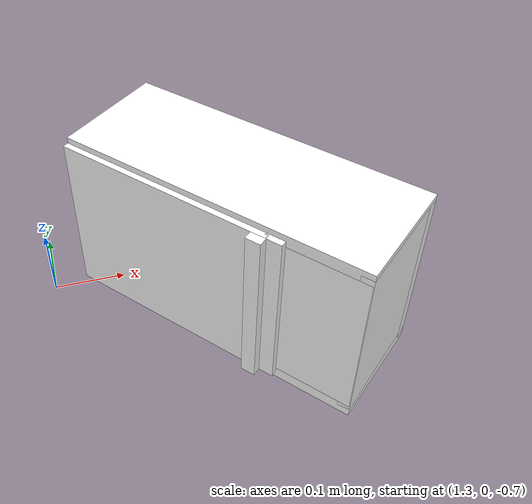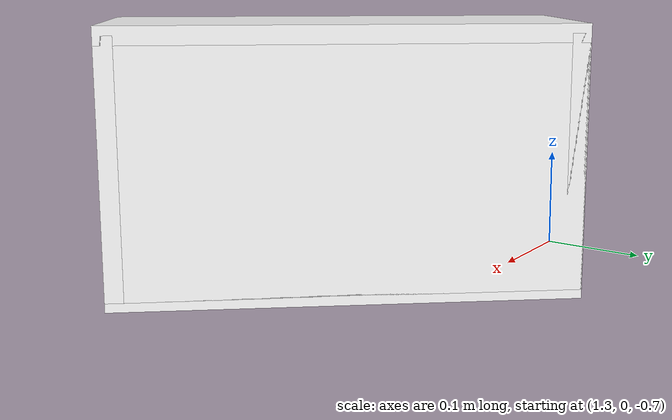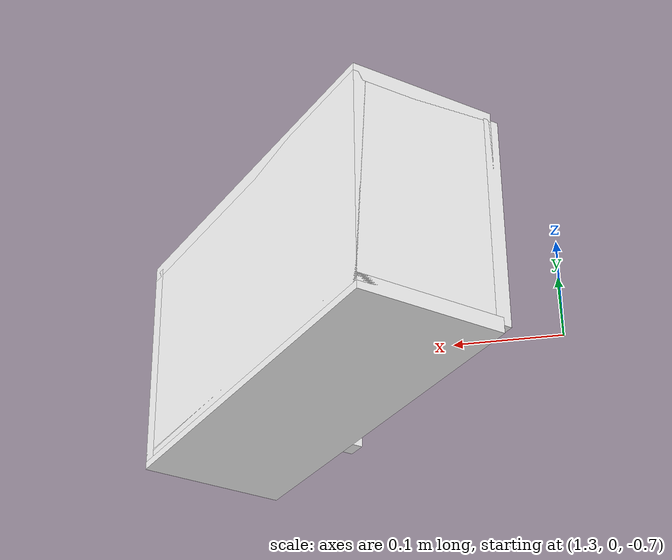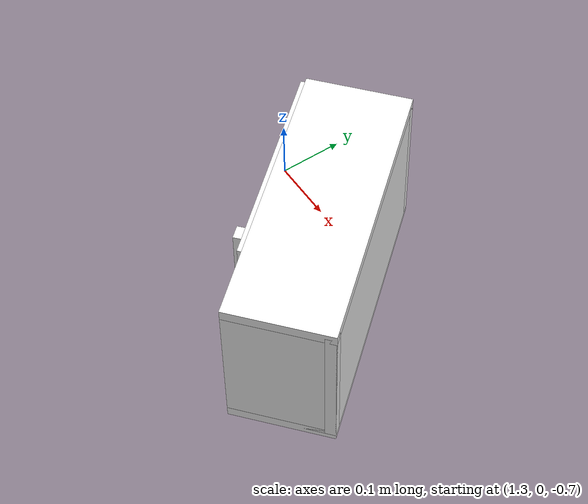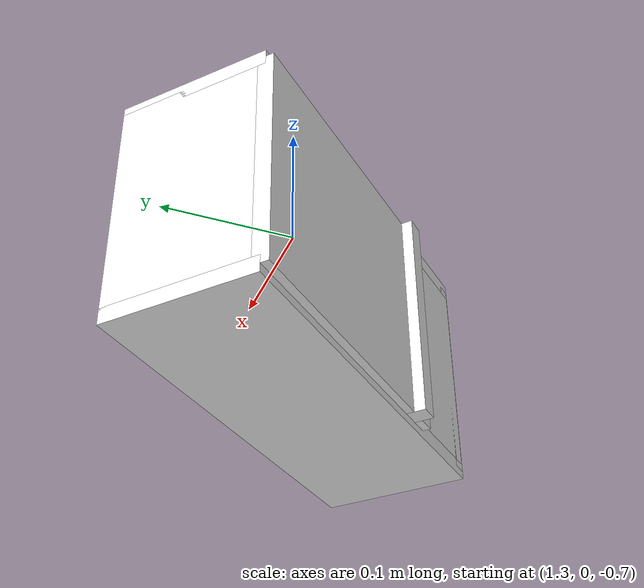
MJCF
<mujoco model="cabinet">
    <compiler angle="radian" eulerseq='zxy' />
    <option gravity = "0 0 0" />
    <option>
        <flag contact = "disable"/>
    </option>
    <statistic	extent="1.0" center="0.0 0.0 0.0"/>
    <visual>
        <map fogstart="3" fogend="5" force="0.1" znear=" 0.100000 " zfar=" 12.000000 "/>
    </visual>
    <size njmax="500" nconmax="100" />
    <actuator>
        <velocity joint="bottom_left_hinge" name="viva_revolution" kv='10'></velocity>
    </actuator>
    <asset>
        <texture builtin="flat" name="tabletex" height="32" width="32" rgb1="1 1 1" type="cube"></texture>
        <texture builtin="flat" name="objtex" height="32" width="32" rgb1="1 1 1" type="cube"></texture>
        <texture builtin="flat" name="handletex" height="32" width="32" rgb1="1 1 1" type="cube"></texture>
        <texture builtin="flat" name="wallpaper" height="32" width="32" rgb1="1 0 0" type="cube"></texture>
        <texture builtin="flat" name="kp" height="32" width="32" rgb1="1 1 1" type="cube"></texture>
        <material name="geomTable" shininess="0.03" specular="0.75" texture="tabletex"></material>
        <material name="geomObj" shininess="0.03" specular="0.75" texture="objtex"></material>
        <material name="geomHandle" shininess="0.03" specular="0.75" texture="handletex"></material>
        <material name="ax" shininess="0.03" specular="0.75" texture="wallpaper"></material>
        <material name="bg" shininess="0.03" specular="0.75" texture="wallpaper"></material>
        <material name="geomKeypad" shininess="0.03" specular="0.75" texture="kp"></material>
    </asset>
    <worldbody>
        <body name="cabinet_bottom" pos= " 1.549569 -0.102070 -0.688349 "  quat= " -0.346691 0.000000 0.000000 0.937979" >
            <inertial pos="0 0 0" mass="1" diaginertia="1 1 1" />
            <geom size= " 0.078434 0.211610 0.008280 "  type="box" material="geomObj" name="b"/>
            <body name="cabinet_left" pos= " 0.000000 -0.203330 0.115395 " >
                <inertial pos="0 0 0" mass="1" diaginertia="1 1 1" />
                <geom size= " 0.078434 0.008280 0.115395 "  type="box" material="geomObj" name="c" />
            </body>
            <body name="cabinet_right" pos= " 0.000000 0.203330 0.115395 " >
                <inertial pos="0 0 0" mass="1" diaginertia="1 1 1" />
                <geom size= " 0.078434 0.008280 0.115395 "  type="box" material="geomObj" name="d" />
            </body>
            <body name="cabinet_top" pos= " 0.000000 0.000000 0.230790 " >
                <inertial pos="0 0 0" mass="1" diaginertia="1 1 1" />
                <geom size= " 0.078434 0.211610 0.008280 "  type="box" material="geomObj" name="e"/>
            </body>
            <body name="cabinet_back" pos= " -0.070154 0.000000 0.115395 "  >
                <inertial pos="0 0 0" mass="1" diaginertia="1 1 1" />
                <geom size= " 0.008280 0.211610 0.115395 "  type="box" material="geomObj" name="f" />
            </body>
            <body name="cabinet_keypad" pos= " 0.008280 0.157708 0.115395 " >
                <inertial pos="0 0 0" mass="1" diaginertia="1 1 1" />
                <geom size= " 0.070154 0.052903 0.107115 "  type="box" material="geomKeypad" name="keypizzlemynizzle" />
            </body>
            <body name="cabinet_left_hinge" pos= " 0.078434 -0.211610 0.115395 " >
                <inertial pos= " 0.000000 0.158708 0.000000 "  mass="1" diaginertia="1 1 1" />
                <joint name="bottom_left_hinge" type="hinge" pos="0 0 0" axis="0 0 1" limited="true" range= "-2.3 0"  />
                <geom size= " 0.008280 0.158708 0.115395 "  pos= " 0.000000 0.158708 0.000000 "  type="box" material="geomObj" name="g"/>
                <body name="handle_link" pos= " 0.010000 0.287416 0.000000 " >
                    <inertial pos="0 0 0" mass="1" diaginertia="1 1 1" />
                    <geom size= " 0.010000 0.010000 0.115395 "  type="box" material="geomHandle" name="h"/>
                </body>
            </body>
        </body>
        <body name="external_camera_body_0" pos="0.0 0 0.00" >
            <camera euler="-1.57 1.57 0.0" fovy=" 54.280851 " name="external_camera_0" pos="0.0 0 0"></camera>
            <inertial pos= " 0.00 0.0 0.000000 " mass="1" diaginertia="1 1 1" />
            <joint name="cam_j" pos="0.0 0 0" axis = "1 0 0" type="free" />
        </body>
    </worldbody>
</mujoco>
